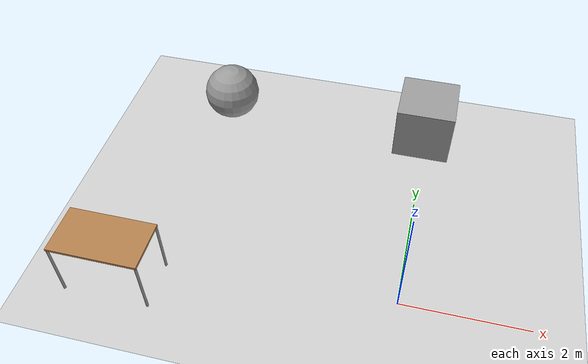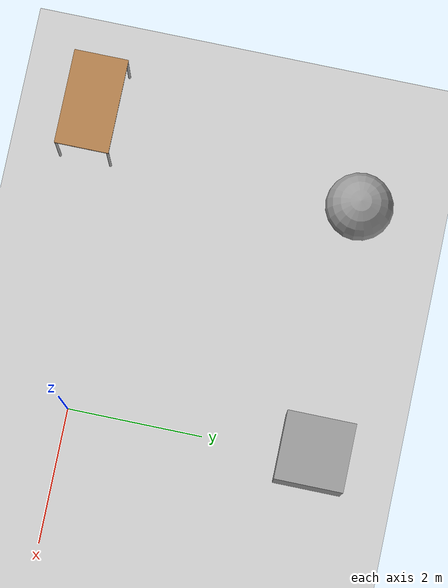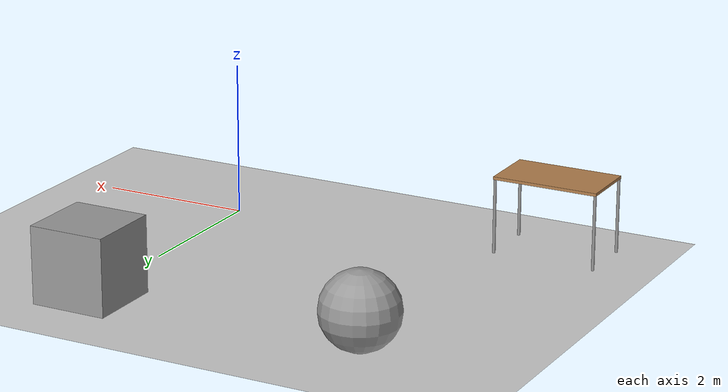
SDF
<sdf version="1.7">
 <world name="default">
  <model name="ground_plane">
   <static>1</static>
   <link name="link">
    <collision name="collision">
     <geometry><plane><normal>0 0 1</normal><size>100 100</size></plane></geometry>
     <surface><friction><ode><mu>100</mu><mu2>50</mu2></ode></friction></surface>
    </collision>
    <visual name="visual">
     <cast_shadows>0</cast_shadows>
     <geometry><plane><normal>0 0 1</normal><size>100 100</size></plane></geometry>
     <material>
      <script><uri>file://media/materials/scripts/gazebo.material</uri><name>Gazebo/Grey</name></script>
     </material>
    </visual>
   </link>
  </model>
  <model name="table">
   <static>0</static>
   <link name="link">
    <collision name="surface">
     <pose>0 0 1 0 -0 0</pose>
     <geometry><box><size>1.5 0.8 0.03</size></box></geometry>
     <surface><friction><ode><mu>0.6</mu><mu2>0.6</mu2></ode></friction></surface>
    </collision>
    <visual name="visual1">
     <pose>0 0 1 0 -0 0</pose>
     <geometry><box><size>1.4 0.8 0.04</size></box></geometry>
     <material>
      <script><uri>file://media/materials/scripts/gazebo.material</uri><name>Gazebo/Wood</name></script>
     </material>
    </visual>
    <collision name="front_left_leg">
     <pose>0.68 0.38 0.5 0 -0 0</pose>
     <geometry><cylinder><radius>0.02</radius><length>1</length></cylinder></geometry>
    </collision>
    <visual name="front_left_leg">
     <pose>0.68 0.38 0.5 0 -0 0</pose>
     <geometry><cylinder><radius>0.02</radius><length>1</length></cylinder></geometry>
     <material>
      <script><uri>file://media/materials/scripts/gazebo.material</uri><name>Gazebo/Grey</name></script>
     </material>
    </visual>
    <collision name="front_right_leg">
     <pose>0.68 -0.38 0.5 0 -0 0</pose>
     <geometry><cylinder><radius>0.02</radius><length>1</length></cylinder></geometry>
    </collision>
    <visual name="front_right_leg">
     <pose>0.68 -0.38 0.5 0 -0 0</pose>
     <geometry><cylinder><radius>0.02</radius><length>1</length></cylinder></geometry>
     <material>
      <script><uri>file://media/materials/scripts/gazebo.material</uri><name>Gazebo/Grey</name></script>
     </material>
    </visual>
    <collision name="back_right_leg">
     <pose>-0.68 -0.38 0.5 0 -0 0</pose>
     <geometry><cylinder><radius>0.02</radius><length>1</length></cylinder></geometry>
    </collision>
    <visual name="back_right_leg">
     <pose>-0.68 -0.38 0.5 0 -0 0</pose>
     <geometry><cylinder><radius>0.02</radius><length>1</length></cylinder></geometry>
     <material>
      <script><uri>file://media/materials/scripts/gazebo.material</uri><name>Gazebo/Grey</name></script>
     </material>
    </visual>
    <collision name="back_left_leg">
     <pose>-0.68 0.38 0.5 0 -0 0</pose>
     <geometry><cylinder><radius>0.02</radius><length>1</length></cylinder></geometry>
    </collision>
    <visual name="back_left_leg">
     <pose>-0.68 0.38 0.5 0 -0 0</pose>
     <geometry><cylinder><radius>0.02</radius><length>1</length></cylinder></geometry>
     <material>
      <script><uri>file://media/materials/scripts/gazebo.material</uri><name>Gazebo/Grey</name></script>
     </material>
    </visual>
    <inertial>
     <inertia><ixx>1</ixx><ixy>0</ixy><ixz>0</ixz><iyy>1</iyy><iyz>0</iyz><izz>1</izz></inertia>
     <mass>1</mass>
    </inertial>
   </link>
   <pose>-4.34248 -0.532954 -8e-06 0 -0 0</pose>
  </model>
  <model name="unit_box_0">
   <pose>-0.055111 3.63373 0.499995 0 1e-05 0</pose>
   <link name="link">
    <inertial>
     <mass>1</mass>
     <inertia>
      <ixx>0.166667</ixx>
      <ixy>0</ixy>
      <ixz>0</ixz>
      <iyy>0.166667</iyy>
      <iyz>0</iyz>
      <izz>0.166667</izz>
     </inertia>
    </inertial>
    <collision name="collision"><geometry><box><size>1 1 1</size></box></geometry></collision>
    <visual name="visual">
     <geometry><box><size>1 1 1</size></box></geometry>
     <material>
      <script><name>Gazebo/Grey</name><uri>file://media/materials/scripts/gazebo.material</uri></script>
     </material>
    </visual>
   </link>
  </model>
  <model name="unit_sphere">
   <pose>-3.7152 3.56694 0.5 0 -0 0</pose>
   <link name="link">
    <inertial>
     <mass>1</mass>
     <inertia><ixx>0.1</ixx><ixy>0</ixy><ixz>0</ixz><iyy>0.1</iyy><iyz>0</iyz><izz>0.1</izz></inertia>
    </inertial>
    <collision name="collision"><geometry><sphere><radius>0.5</radius></sphere></geometry></collision>
    <visual name="visual">
     <geometry><sphere><radius>0.5</radius></sphere></geometry>
     <material>
      <script><name>Gazebo/Grey</name><uri>file://media/materials/scripts/gazebo.material</uri></script>
     </material>
    </visual>
   </link>
  </model>
 </world>
</sdf>
